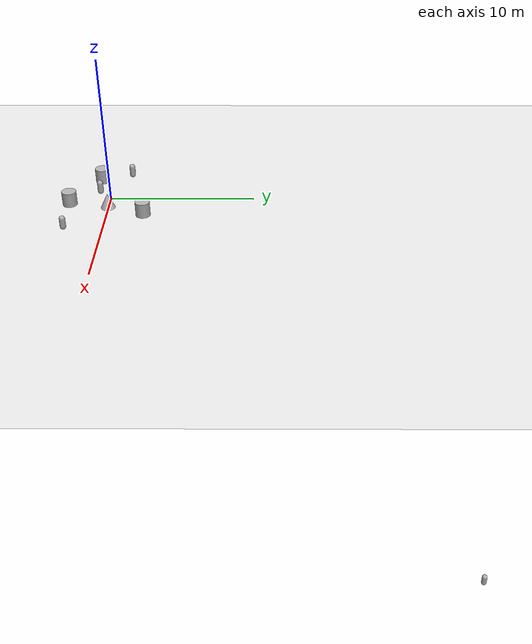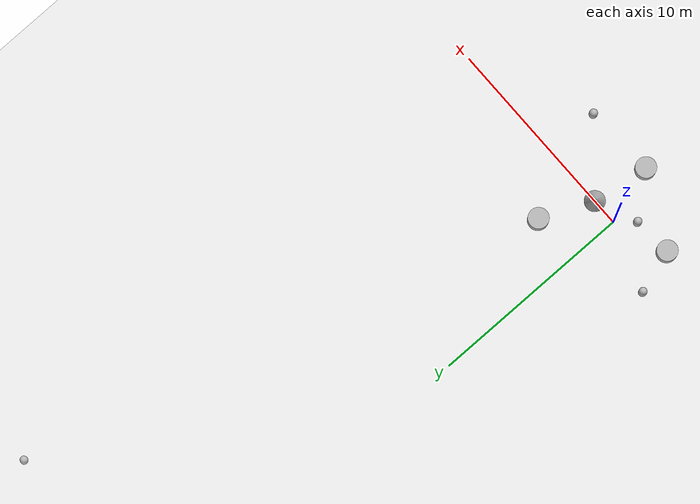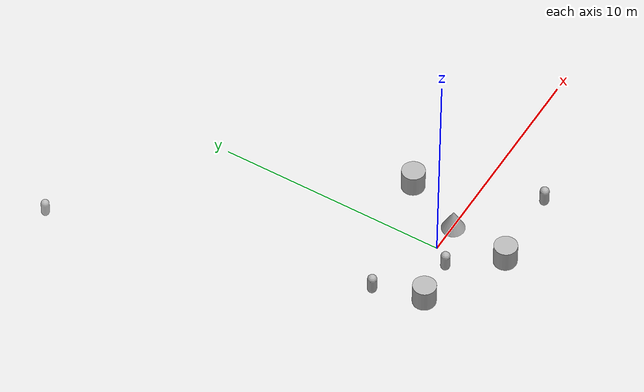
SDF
<sdf version="1.10">
 <world name="demo">
  <plugin name="gz::sim::systems::Physics" filename="gz-sim-physics-system"/>
  <plugin name="gz::sim::systems::Sensors" filename="gz-sim-sensors-system">
   <render_engine>ogre2</render_engine>
  </plugin>
  <plugin name="gz::sim::systems::SceneBroadcaster" filename="gz-sim-scene-broadcaster-system"/>
  <plugin name="gz::sim::systems::UserCommands" filename="gz-sim-user-commands-system"/>
  <gravity>0 0 -9.8000000000000007</gravity>
  <magnetic_field>5.5644999999999998e-06 2.2875799999999999e-05 -4.2388400000000002e-05</magnetic_field>
  <atmosphere type="adiabatic"/>
  <physics type="ode">
   <max_step_size>0.001</max_step_size>
   <real_time_factor>1</real_time_factor>
   <real_time_update_rate>1000</real_time_update_rate>
  </physics>
  <scene>
   <ambient>0.400000006 0.400000006 0.400000006 1</ambient>
   <background>0.699999988 0.699999988 0.699999988 1</background>
   <shadows>true</shadows>
  </scene>
  <model name="ground_plane">
   <static>true</static>
   <link name="link">
    <collision name="collision">
     <geometry><plane><normal>0 0 1</normal><size>100 100</size></plane></geometry>
    </collision>
    <visual name="visual">
     <geometry><plane><normal>0 0 1</normal><size>100 100</size></plane></geometry>
     <material>
      <ambient>0.800000012 0.800000012 0.800000012 1</ambient>
      <diffuse>0.800000012 0.800000012 0.800000012 1</diffuse>
      <specular>0.800000012 0.800000012 0.800000012 1</specular>
     </material>
    </visual>
    <inertial>
     <mass>1</mass>
     <inertia><ixx>1</ixx><ixy>0</ixy><ixz>0</ixz><iyy>1</iyy><iyz>0</iyz><izz>1</izz></inertia>
    </inertial>
   </link>
  </model>
  <model name="cone">
   <pose>1.2883225655008992 -0.015957591851417405 0.49999999537635992 8.0245505548358931e-11 -2.5301135110070349e-05 7.5282564279632562e-10</pose>
   <link name="cone_link">
    <inertial>
     <inertia>
      <ixx>0.074999999999999997</ixx>
      <ixy>0</ixy>
      <ixz>0</ixz>
      <iyy>0.074999999999999997</iyy>
      <iyz>0</iyz>
      <izz>0.074999999999999997</izz>
     </inertia>
     <mass>1</mass>
    </inertial>
    <collision name="cone_collision">
     <geometry><cone><radius>0.5</radius><length>1</length></cone></geometry>
    </collision>
    <visual name="cone_visual">
     <geometry><cone><radius>0.5</radius><length>1</length></cone></geometry>
     <material>
      <ambient>0.300000012 0.300000012 0.300000012 1</ambient>
      <diffuse>0.699999988 0.699999988 0.699999988 1</diffuse>
      <specular>1 1 1 1</specular>
     </material>
    </visual>
   </link>
   <static>false</static>
  </model>
  <model name="cylinder">
   <pose>0.85997044343640905 -2.7117653481562018 0.49999942638036005 2.9647910008357404e-19 -3.5342595480191866e-19 -1.9749318374179829e-20</pose>
   <link name="cylinder_link">
    <inertial>
     <inertia>
      <ixx>0.14580000000000001</ixx>
      <ixy>0</ixy>
      <ixz>0</ixz>
      <iyy>0.14580000000000001</iyy>
      <iyz>0</iyz>
      <izz>0.125</izz>
     </inertia>
     <mass>1</mass>
    </inertial>
    <collision name="cylinder_collision">
     <geometry><cylinder><radius>0.5</radius><length>1</length></cylinder></geometry>
    </collision>
    <visual name="cylinder_visual">
     <geometry><cylinder><radius>0.5</radius><length>1</length></cylinder></geometry>
     <material>
      <ambient>0.300000012 0.300000012 0.300000012 1</ambient>
      <diffuse>0.699999988 0.699999988 0.699999988 1</diffuse>
      <specular>1 1 1 1</specular>
     </material>
    </visual>
   </link>
   <static>false</static>
  </model>
  <model name="cylinder_0">
   <pose>-2.6355608273717537 -0.92389860739958474 0.49999942638036005 1.2774232481653113e-19 2.5193532196323549e-19 -1.2660625429714311e-21</pose>
   <link name="cylinder_link">
    <inertial>
     <inertia>
      <ixx>0.14580000000000001</ixx>
      <ixy>0</ixy>
      <ixz>0</ixz>
      <iyy>0.14580000000000001</iyy>
      <iyz>0</iyz>
      <izz>0.125</izz>
     </inertia>
     <mass>1</mass>
    </inertial>
    <collision name="cylinder_collision">
     <geometry><cylinder><radius>0.5</radius><length>1</length></cylinder></geometry>
    </collision>
    <visual name="cylinder_visual">
     <geometry><cylinder><radius>0.5</radius><length>1</length></cylinder></geometry>
     <material>
      <ambient>0.300000012 0.300000012 0.300000012 1</ambient>
      <diffuse>0.699999988 0.699999988 0.699999988 1</diffuse>
      <specular>1 1 1 1</specular>
     </material>
    </visual>
   </link>
   <static>false</static>
  </model>
  <model name="capsule">
   <pose>11.424633671051218 27.296208863388269 -26.300023727250167 -7.3317604757665639e-08 -6.188190533155462e-09 -2.5082744147776941</pose>
   <link name="capsule_link">
    <inertial>
     <inertia>
      <ixx>0.074153999999999998</ixx>
      <ixy>0</ixy>
      <ixz>0</ixz>
      <iyy>0.074153999999999998</iyy>
      <iyz>0</iyz>
      <izz>0.018769000000000001</izz>
     </inertia>
     <mass>1</mass>
    </inertial>
    <collision name="capsule_collision">
     <geometry>
      <capsule><radius>0.20000000000000001</radius><length>0.59999999999999998</length></capsule>
     </geometry>
    </collision>
    <visual name="capsule_visual">
     <geometry>
      <capsule><radius>0.20000000000000001</radius><length>0.59999999999999998</length></capsule>
     </geometry>
     <material>
      <ambient>0.300000012 0.300000012 0.300000012 1</ambient>
      <diffuse>0.699999988 0.699999988 0.699999988 1</diffuse>
      <specular>1 1 1 1</specular>
     </material>
    </visual>
   </link>
   <static>false</static>
  </model>
  <model name="cylinder_1">
   <pose>2.3552616652016978 2.5117161364164255 0.49999982567206286 4.816966988038787e-07 -1.1536291634671711e-06 0.013697439703809718</pose>
   <link name="cylinder_link">
    <inertial>
     <inertia>
      <ixx>0.14580000000000001</ixx>
      <ixy>0</ixy>
      <ixz>0</ixz>
      <iyy>0.14580000000000001</iyy>
      <iyz>0</iyz>
      <izz>0.125</izz>
     </inertia>
     <mass>1</mass>
    </inertial>
    <collision name="cylinder_collision">
     <geometry><cylinder><radius>0.5</radius><length>1</length></cylinder></geometry>
    </collision>
    <visual name="cylinder_visual">
     <geometry><cylinder><radius>0.5</radius><length>1</length></cylinder></geometry>
     <material>
      <ambient>0.300000012 0.300000012 0.300000012 1</ambient>
      <diffuse>0.699999988 0.699999988 0.699999988 1</diffuse>
      <specular>1 1 1 1</specular>
     </material>
    </visual>
   </link>
   <static>false</static>
  </model>
  <model name="capsule_0">
   <pose>-3.2997174876574666 1.1398536969657334 0.499999999902001 0 0 0</pose>
   <link name="capsule_link">
    <inertial>
     <inertia>
      <ixx>0.074153999999999998</ixx>
      <ixy>0</ixy>
      <ixz>0</ixz>
      <iyy>0.074153999999999998</iyy>
      <iyz>0</iyz>
      <izz>0.018769000000000001</izz>
     </inertia>
     <mass>1</mass>
    </inertial>
    <collision name="capsule_collision">
     <geometry>
      <capsule><radius>0.20000000000000001</radius><length>0.59999999999999998</length></capsule>
     </geometry>
    </collision>
    <visual name="capsule_visual">
     <geometry>
      <capsule><radius>0.20000000000000001</radius><length>0.59999999999999998</length></capsule>
     </geometry>
     <material>
      <ambient>0.300000012 0.300000012 0.300000012 1</ambient>
      <diffuse>0.699999988 0.699999988 0.699999988 1</diffuse>
      <specular>1 1 1 1</specular>
     </material>
    </visual>
   </link>
   <static>false</static>
  </model>
  <model name="capsule_1">
   <pose>4.3175046219682596 -2.5786806129974162 0.499999999902001 0 0 0</pose>
   <link name="capsule_link">
    <inertial>
     <inertia>
      <ixx>0.074153999999999998</ixx>
      <ixy>0</ixy>
      <ixz>0</ixz>
      <iyy>0.074153999999999998</iyy>
      <iyz>0</iyz>
      <izz>0.018769000000000001</izz>
     </inertia>
     <mass>1</mass>
    </inertial>
    <collision name="capsule_collision">
     <geometry>
      <capsule><radius>0.20000000000000001</radius><length>0.59999999999999998</length></capsule>
     </geometry>
    </collision>
    <visual name="capsule_visual">
     <geometry>
      <capsule><radius>0.20000000000000001</radius><length>0.59999999999999998</length></capsule>
     </geometry>
     <material>
      <ambient>0.300000012 0.300000012 0.300000012 1</ambient>
      <diffuse>0.699999988 0.699999988 0.699999988 1</diffuse>
      <specular>1 1 1 1</specular>
     </material>
    </visual>
   </link>
   <static>false</static>
  </model>
  <model name="capsule_2">
   <pose>-0.73902889717341491 -0.80915637542894947 0.499999999902001 0 0 0</pose>
   <link name="capsule_link">
    <inertial>
     <inertia>
      <ixx>0.074153999999999998</ixx>
      <ixy>0</ixy>
      <ixz>0</ixz>
      <iyy>0.074153999999999998</iyy>
      <iyz>0</iyz>
      <izz>0.018769000000000001</izz>
     </inertia>
     <mass>1</mass>
    </inertial>
    <collision name="capsule_collision">
     <geometry>
      <capsule><radius>0.20000000000000001</radius><length>0.59999999999999998</length></capsule>
     </geometry>
    </collision>
    <visual name="capsule_visual">
     <geometry>
      <capsule><radius>0.20000000000000001</radius><length>0.59999999999999998</length></capsule>
     </geometry>
     <material>
      <ambient>0.300000012 0.300000012 0.300000012 1</ambient>
      <diffuse>0.699999988 0.699999988 0.699999988 1</diffuse>
      <specular>1 1 1 1</specular>
     </material>
    </visual>
   </link>
   <static>false</static>
  </model>
  <light name="sun" type="directional">
   <pose>0 0 10 0 0 0</pose>
   <intensity>1</intensity>
   <direction>-0.5 0.10000000000000001 -0.90000000000000002</direction>
   <diffuse>0.800000012 0.800000012 0.800000012 1</diffuse>
   <specular>0.200000003 0.200000003 0.200000003 1</specular>
   <attenuation>
    <range>1000</range>
    <linear>0.0099999997764825821</linear>
    <constant>0.89999997615814209</constant>
    <quadratic>0.0010000000474974513</quadratic>
   </attenuation>
   <spot><inner_angle>0</inner_angle><outer_angle>0</outer_angle><falloff>0</falloff></spot>
  </light>
 </world>
</sdf>
